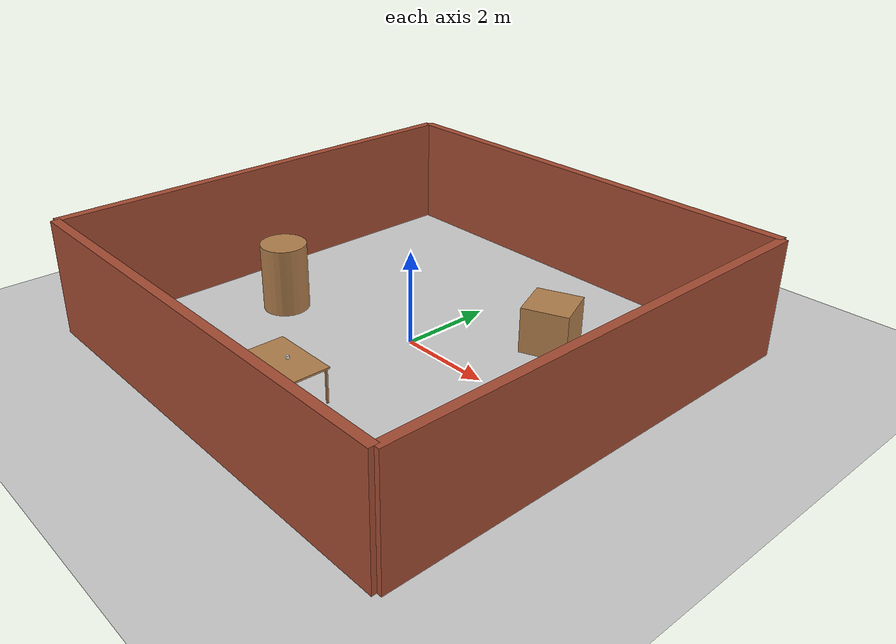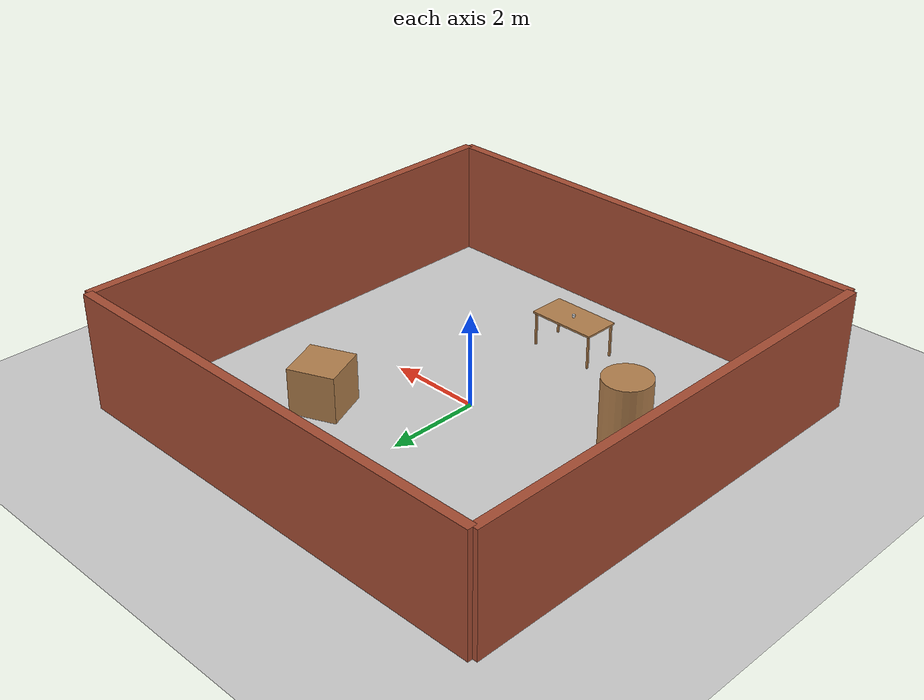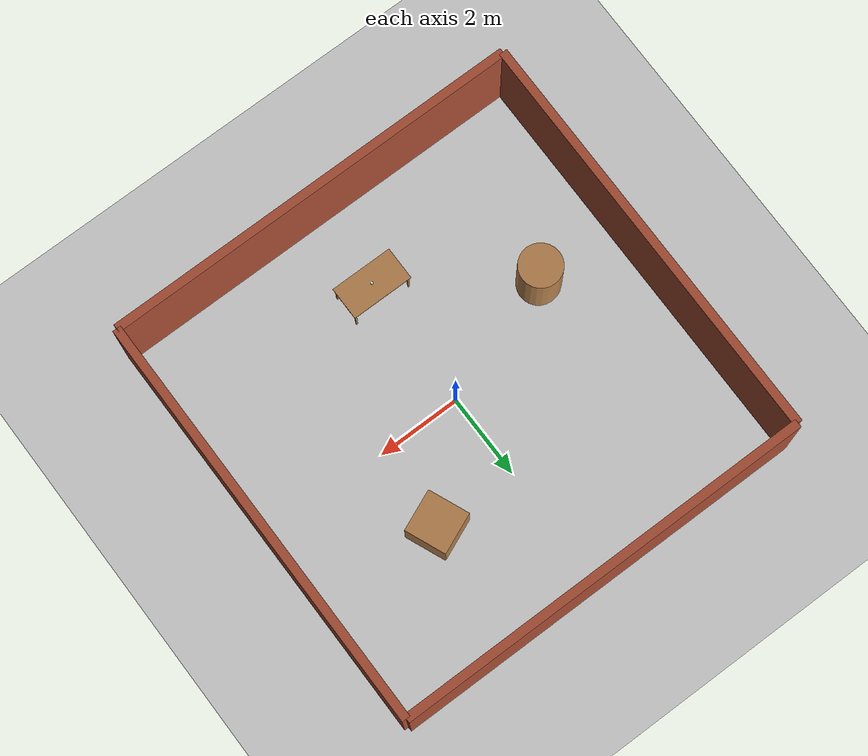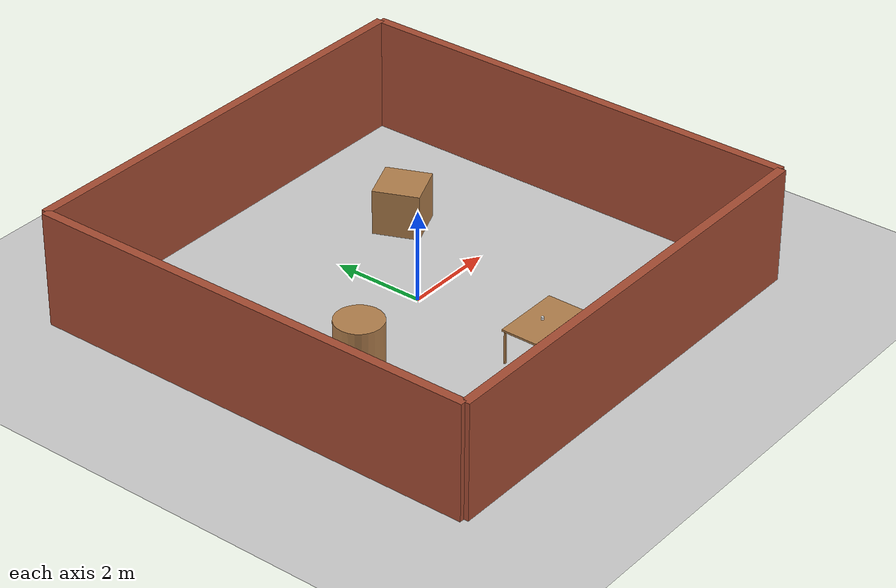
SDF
<?xml version="1.0" ?>
<sdf version="1.6">
  <world name="obstacle_room">
    <!-- Remove problematic plugin for now -->
    <light type="directional" name="sun">
      <cast_shadows>true</cast_shadows>
      <pose>0 0 10 0 0 0</pose>
      <diffuse>0.8 0.8 0.8 1</diffuse>
      <specular>0.2 0.2 0.2 1</specular>
      <attenuation>
        <range>1000</range>
        <constant>0.9</constant>
        <linear>0.01</linear>
        <quadratic>0.001</quadratic>
      </attenuation>
      <direction>-0.5 0.1 -0.9</direction>
    </light>

    <model name="ground_plane">
      <static>true</static>
      <link name="link">
        <collision name="collision">
          <geometry>
            <plane>
              <normal>0 0 1</normal>
              <size>100 100</size>
            </plane>
          </geometry>
          <surface>
            <friction>
              <ode>
                <mu>100</mu>
                <mu2>50</mu2>
              </ode>
            </friction>
          </surface>
        </collision>
        <visual name="visual">
          <cast_shadows>false</cast_shadows>
          <geometry>
            <plane>
              <normal>0 0 1</normal>
              <size>100 100</size>
            </plane>
          </geometry>
          <material>
            <script>
              <uri>file://media/materials/scripts/gazebo.material</uri>
              <name>Gazebo/Grey</name>
            </script>
          </material>
        </visual>
      </link>
    </model>

    <!-- Room Walls -->
    <model name="wall_north">
      <static>true</static>
      <pose>0 5 1.25 0 0 0</pose>
      <link name="link">
        <collision name="collision">
          <geometry><box><size>10 0.2 2.5</size></box></geometry>
        </collision>
        <visual name="visual">
          <geometry><box><size>10 0.2 2.5</size></box></geometry>
          <material><script><uri>file://media/materials/scripts/gazebo.material</uri><name>Gazebo/Bricks</name></script></material>
        </visual>
      </link>
    </model>
    <model name="wall_south">
      <static>true</static>
      <pose>0 -5 1.25 0 0 0</pose>
      <link name="link">
        <collision name="collision">
          <geometry><box><size>10 0.2 2.5</size></box></geometry>
        </collision>
        <visual name="visual">
          <geometry><box><size>10 0.2 2.5</size></box></geometry>
          <material><script><uri>file://media/materials/scripts/gazebo.material</uri><name>Gazebo/Bricks</name></script></material>
        </visual>
      </link>
    </model>
    <model name="wall_east">
      <static>true</static>
      <pose>5 0 1.25 0 0 1.5707</pose>
      <link name="link">
        <collision name="collision">
          <geometry><box><size>10 0.2 2.5</size></box></geometry>
        </collision>
        <visual name="visual">
          <geometry><box><size>10 0.2 2.5</size></box></geometry>
          <material><script><uri>file://media/materials/scripts/gazebo.material</uri><name>Gazebo/Bricks</name></script></material>
        </visual>
      </link>
    </model>
    <model name="wall_west">
      <static>true</static>
      <pose>-5 0 1.25 0 0 1.5707</pose>
      <link name="link">
        <collision name="collision">
          <geometry><box><size>10 0.2 2.5</size></box></geometry>
        </collision>
        <visual name="visual">
          <geometry><box><size>10 0.2 2.5</size></box></geometry>
          <material><script><uri>file://media/materials/scripts/gazebo.material</uri><name>Gazebo/Bricks</name></script></material>
        </visual>
      </link>
    </model>

    <!-- Obstacles -->
    <model name="obstacle_box">
      <static>true</static>
      <pose>2 2 0.5 0 0 0.4</pose>
      <link name="link">
        <collision name="collision">
          <geometry><box><size>1 1 1</size></box></geometry>
        </collision>
        <visual name="visual">
          <geometry><box><size>1 1 1</size></box></geometry>
          <material><script><uri>file://media/materials/scripts/gazebo.material</uri><name>Gazebo/Wood</name></script></material>
        </visual>
      </link>
    </model>
    <model name="obstacle_cylinder">
      <static>true</static>
      <pose>-3 -1 0.75 0 0 0</pose>
      <link name="link">
        <collision name="collision">
          <geometry><cylinder><radius>0.5</radius><length>1.5</length></cylinder></geometry>
        </collision>
        <visual name="visual">
          <geometry><cylinder><radius>0.5</radius><length>1.5</length></cylinder></geometry>
          <material><script><uri>file://media/materials/scripts/gazebo.material</uri><name>Gazebo/Wood</name></script></material>
        </visual>
      </link>
    </model>

    <!-- Table -->
    <model name="table">
      <static>true</static>
      <pose>0 -3 0 0 0 0</pose>
      <link name="table_top">
        <pose>0 0 0.75 0 0 0</pose>
        <collision name="collision">
          <geometry><box><size>1.5 0.8 0.04</size></box></geometry>
        </collision>
        <visual name="visual">
          <geometry><box><size>1.5 0.8 0.04</size></box></geometry>
          <material><script><uri>file://media/materials/scripts/gazebo.material</uri><name>Gazebo/DarkWood</name></script></material>
        </visual>
      </link>
      <link name="leg1">
        <pose>-0.7 0.35 0.375 0 0 0</pose>
        <collision name="collision">
          <geometry><box><size>0.04 0.04 0.75</size></box></geometry>
        </collision>
        <visual name="visual">
          <geometry><box><size>0.04 0.04 0.75</size></box></geometry>
          <material><script><uri>file://media/materials/scripts/gazebo.material</uri><name>Gazebo/DarkWood</name></script></material>
        </visual>
      </link>
      <link name="leg2">
        <pose>0.7 0.35 0.375 0 0 0</pose>
        <collision name="collision">
          <geometry><box><size>0.04 0.04 0.75</size></box></geometry>
        </collision>
        <visual name="visual">
          <geometry><box><size>0.04 0.04 0.75</size></box></geometry>
          <material><script><uri>file://media/materials/scripts/gazebo.material</uri><name>Gazebo/DarkWood</name></script></material>
        </visual>
      </link>
      <link name="leg3">
        <pose>-0.7 -0.35 0.375 0 0 0</pose>
        <collision name="collision">
          <geometry><box><size>0.04 0.04 0.75</size></box></geometry>
        </collision>
        <visual name="visual">
          <geometry><box><size>0.04 0.04 0.75</size></box></geometry>
          <material><script><uri>file://media/materials/scripts/gazebo.material</uri><name>Gazebo/DarkWood</name></script></material>
        </visual>
      </link>
      <link name="leg4">
        <pose>0.7 -0.35 0.375 0 0 0</pose>
        <collision name="collision">
          <geometry><box><size>0.04 0.04 0.75</size></box></geometry>
        </collision>
        <visual name="visual">
          <geometry><box><size>0.04 0.04 0.75</size></box></geometry>
          <material><script><uri>file://media/materials/scripts/gazebo.material</uri><name>Gazebo/DarkWood</name></script></material>
        </visual>
      </link>
    </model>

    <!-- Glass on the table -->
    <model name="glass">
      <pose>0 -3 0.79 0 0 0</pose> <!-- on top of the table -->
      <link name="link">
        <collision name="collision">
          <geometry><cylinder><radius>0.03</radius><length>0.08</length></cylinder></geometry>
        </collision>
        <visual name="visual">
          <geometry><cylinder><radius>0.03</radius><length>0.08</length></cylinder></geometry>
          <material>
            <script>
              <uri>file://media/materials/scripts/gazebo.material</uri>
              <name>Gazebo/White</name>
            </script>
            <ambient>0.1 0.1 0.1 0.3</ambient>
            <diffuse>0.1 0.1 0.1 0.3</diffuse>
            <specular>0 0 0 0</specular>
            <emissive>0 0 0 1</emissive>
            <transparency>0.7</transparency>
          </material>
        </visual>
        <inertial>
            <mass>0.1</mass>
            <inertia>
                <ixx>0.0001</ixx>
                <ixy>0</ixy>
                <ixz>0</ixz>
                <iyy>0.0001</iyy>
                <iyz>0</iyz>
                <izz>0.0001</izz>
            </inertia>
        </inertial>
      </link>
    </model>

  </world>
</sdf>
